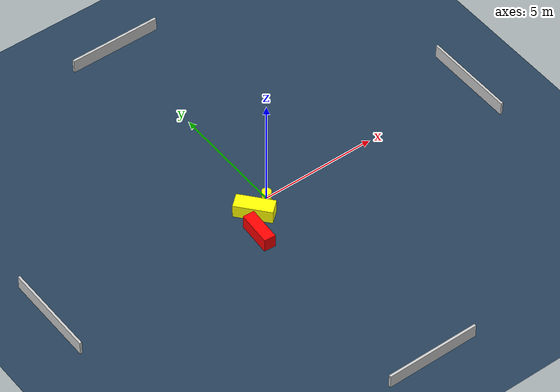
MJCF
<?xml version="1.0" ?>
<mujoco model="generated_environment">
  <option timestep="0.01" integrator="RK4" cone="elliptic"/>
  <default>
    <geom density="1"/>
  </default>
  <asset>
    <texture builtin="gradient" height="3072" name="skybox" rgb1="0.3 0.5 0.7" rgb2="0 0 0" type="skybox" width="512"/>
    <texture builtin="checker" height="300" name="groundplane" rgb1="0.2 0.3 0.4" rgb2="0.1 0.2 0.3" type="2d" width="300"/>
    <material name="groundplane" reflectance="0.2" texrepeat="5 5" texture="groundplane"/>
  </asset>
  <worldbody>
    <light dir="0 0 -1" directional="true" pos="0 0 1.5"/>
    <geom condim="3" friction="0.5 0.005 0.001" material="groundplane" name="floor" pos="0 0 0" size="0 0 0.05" type="plane"/>
    <body name="walls">
      <geom name="wall_1" condim="4" pos="-10.0 0.0 0.3" rgba="0.800000011920929 0.800000011920929 0.800000011920929 1.0" size="0.05 2.0 0.3" type="box"/>
      <geom name="wall_2" condim="4" pos="10.0 0.0 0.3" rgba="0.800000011920929 0.800000011920929 0.800000011920929 1.0" size="0.05 2.0 0.3" type="box"/>
      <geom name="wall_3" condim="4" pos="0.0 -10.0 0.3" rgba="0.800000011920929 0.800000011920929 0.800000011920929 1.0" size="2.0 0.05 0.3" type="box"/>
      <geom name="wall_4" condim="4" pos="0.0 10.0 0.3" rgba="0.800000011920929 0.800000011920929 0.800000011920929 1.0" size="2.0 0.05 0.3" type="box"/>
    </body>
    <body name="robot">
      <joint name="joint_x" type="slide" pos="0 0 0" axis="1 0 0"/>
      <joint name="joint_y" type="slide" pos="0 0 0" axis="0 1 0"/>
      <geom name="robot" type="cylinder" pos="0.0 0.0 0.2" size="0.2 0.2 0.0" mass="5.0" friction="1.0 0.005 0.0001" condim="4" rgba="1.0 1.0 0.0 1.0"/>
    </body>
    <body name="obstacle_1_movable">
      <geom name="obstacle_1_movable" condim="4" pos="-0.8411774556315326 -0.35211317314847046 0.3" euler="0 0 130.28902510988564" friction="0.0 0.005 0.001" rgba="1.0 1.0 0.0 1.0" size="0.7894050912117763 0.32119459701038566 0.3" type="box" mass="0.1"/>
      <joint type="free"/>
    </body>
    <body name="obstacle_2_static">
      <geom name="obstacle_2_static" condim="4" pos="-1.392607935718213 -1.3710561654613937 0.3" euler="0 0 86.30536596276295" friction="0.0 0.005 0.001" rgba="1.0 0.0 0.0 1.0" size="0.7369158577213619 0.2469490429396568 0.3" type="box"/>
    </body>
  </worldbody>
  <actuator>
    <motor name="actuator_x" joint="joint_x" gear="1" ctrlrange="-1 1"/>
    <motor name="actuator_y" joint="joint_y" gear="1" ctrlrange="-1 1"/>
  </actuator>
</mujoco>
